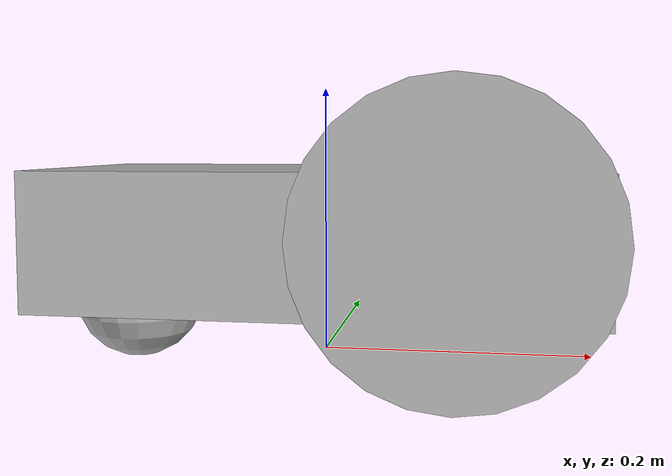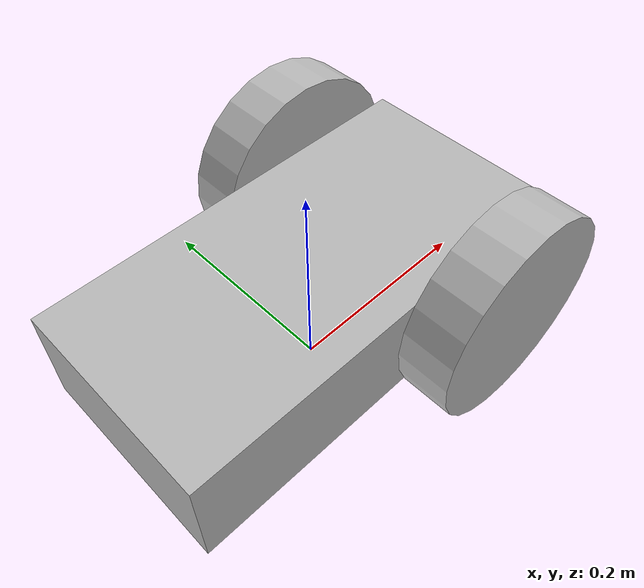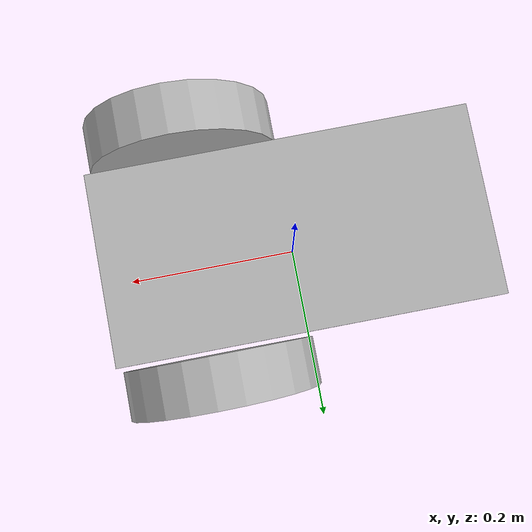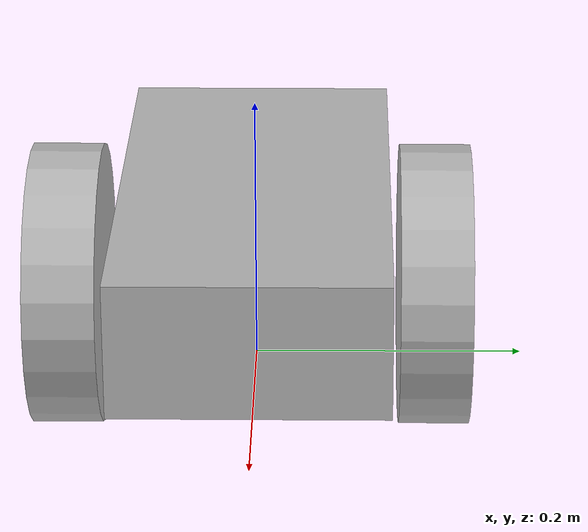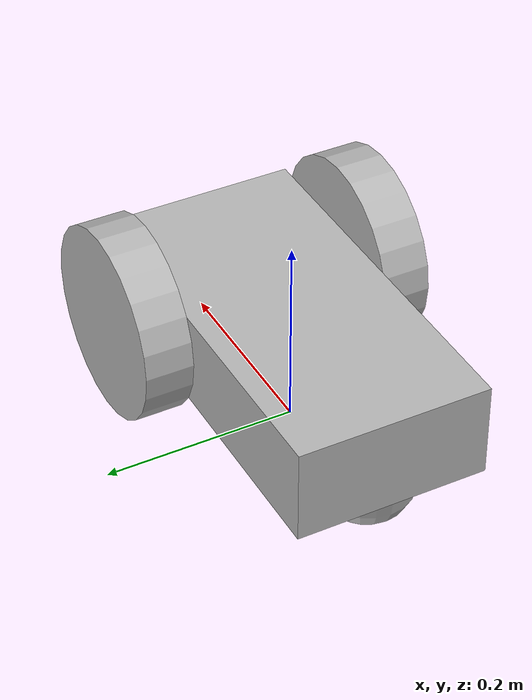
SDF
<?xml version='1.0'?>
<sdf version='1.4'>
  <model name="h-bot">
	<static>true</static> #Change this later
	  <link name='chassis'>
            <pose>0 0 .09 0 0 0</pose>

            <collision name='collision'>
              <geometry>
                <box>
                  <size>.4 .2 .1</size>
                </box>
              </geometry>
            </collision>

            <visual name='visual'>
              <geometry>
                <box>
                  <size>.4 .2 .1</size>
                </box>
              </geometry>
            </visual>
          <collision name='caster_collision'>
            <pose>-0.15 0 -0.05 0 0 0</pose>
            <geometry>
                <sphere>
                <radius>.05</radius>
              </sphere>
            </geometry>

            <surface>
              <friction>
                <ode>
                  <mu>0</mu>
                  <mu2>0</mu2>
                  <slip1>1.0</slip1>
                  <slip2>1.0</slip2>
                </ode>
              </friction>
            </surface>
          </collision>

          <visual name='caster_visual'>
            <pose>-0.15 0 -0.05 0 0 0</pose>
            <geometry>
              <sphere>
                <radius>.05</radius>
              </sphere>
            </geometry>
          </visual>
          </link>
	<link name="left_wheel">
        <pose>0.1 0.13 0.1 0 1.5707 1.5707</pose>
        <collision name="collision">
          <geometry>
            <cylinder>
              <radius>.1</radius>
              <length>.05</length>
            </cylinder>
          </geometry>
        </collision>
        <visual name="visual">
          <geometry>
            <cylinder>
              <radius>.1</radius>
              <length>.05</length>
            </cylinder>
          </geometry>
        </visual>
      </link>
 	<link name="right_wheel">
        <pose>0.1 -0.13 0.1 0 1.5707 1.5707</pose>
        <collision name="collision">
          <geometry>
            <cylinder>
              <radius>.1</radius>
              <length>.05</length>
            </cylinder>
          </geometry>
        </collision>
        <visual name="visual">
          <geometry>
            <cylinder>
              <radius>.1</radius>
              <length>.05</length>
            </cylinder>
          </geometry>
        </visual>
      </link>
  </model>
</sdf>
